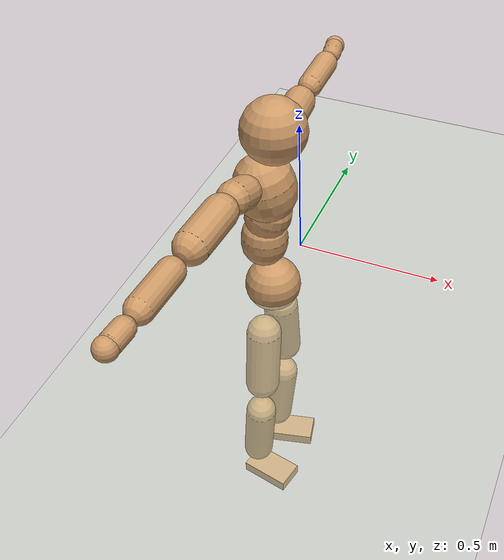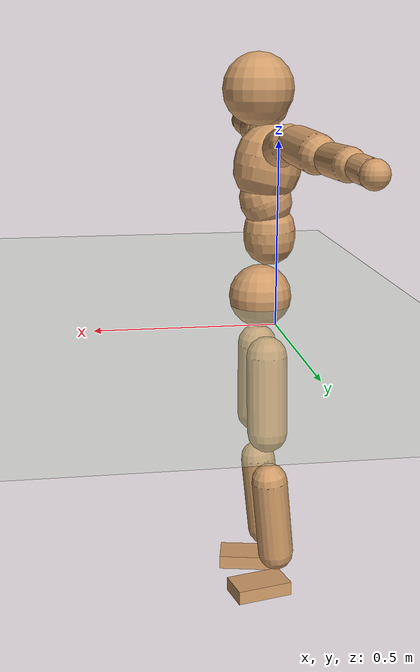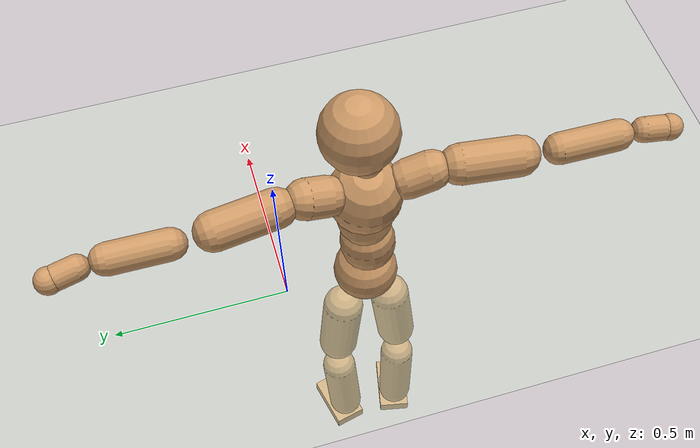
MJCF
<mujoco model="humanoid">
  <compiler coordinate="local"/>
  <default>
    <joint damping="0.0" armature="0.01" stiffness="0.0" limited="true"/>
    <geom conaffinity="1" condim="3" contype="7" margin="0.001" rgba="0.8 0.6 .4 1"/>
  </default>
  <asset>
    <texture type="skybox" builtin="gradient" rgb1=".4 .5 .6" rgb2="0 0 0" width="100" height="100"/>
    <texture builtin="flat" height="1278" mark="cross" markrgb="1 1 1" name="texgeom" random="0.01" rgb1="0.8 0.6 0.4" rgb2="0.8 0.6 0.4" type="cube" width="127"/>
    <texture builtin="checker" height="100" name="texplane" rgb1="0 0 0" rgb2="0.8 0.8 0.8" type="2d" width="100"/>
    <material name="MatPlane" reflectance="0.5" shininess="1" specular="1" texrepeat="60 60" texture="texplane"/>
    <material name="geom" texture="texgeom" texuniform="true"/>
  </asset>
  <worldbody>
    <light cutoff="100" diffuse="1 1 1" dir="-0 0 -1.3" directional="true" exponent="1" pos="0 0 1.3" specular=".1 .1 .1"/>
    <geom conaffinity="1" condim="3" name="floor" pos="0 0 0" rgba="0.8 0.9 0.8 1" size="100 100 .2" type="plane" material="MatPlane"/>
    <body name="Pelvis" pos="-0.0028 -0.235 0.0247">
      <freejoint name="Pelvis"/>
      <geom type="sphere" contype="1" conaffinity="1" density="500" size="0.0929" pos="0.0000 0.0000 0.0000" name="Pelvis"/>
      <body name="L_Hip" pos="-0.008 0.066 -0.092">
        <joint name="L_Hip_x" type="hinge" pos="0 0 0" axis="1 0 0" stiffness="800" damping="80" armature="0.02" range="-180.0000 180.0000"/>
        <joint name="L_Hip_y" type="hinge" pos="0 0 0" axis="0 1 0" stiffness="800" damping="80" armature="0.02" range="-180.0000 180.0000"/>
        <joint name="L_Hip_z" type="hinge" pos="0 0 0" axis="0 0 1" stiffness="800" damping="80" armature="0.02" range="-180.0000 180.0000"/>
        <geom type="capsule" contype="1" conaffinity="1" density="500" fromto="-0.0001 0.0076 -0.0765 -0.0006 0.0304 -0.3062" size="0.0603" name="L_Hip"/>
        <body name="L_Knee" pos="-0.0007 0.038 -0.3827">
          <joint name="L_Knee_x" type="hinge" pos="0 0 0" axis="1 0 0" stiffness="800" damping="80" armature="0.02" range="-180.0000 180.0000"/>
          <joint name="L_Knee_y" type="hinge" pos="0 0 0" axis="0 1 0" stiffness="800" damping="80" armature="0.02" range="-180.0000 180.0000"/>
          <joint name="L_Knee_z" type="hinge" pos="0 0 0" axis="0 0 1" stiffness="800" damping="80" armature="0.02" range="-180.0000 180.0000"/>
          <geom type="capsule" contype="1" conaffinity="1" density="500" fromto="-0.0086 -0.0031 -0.0814 -0.0342 -0.0124 -0.3255" size="0.0543" name="L_Knee"/>
          <body name="L_Ankle" pos="-0.0428 -0.0155 -0.4069">
            <joint name="L_Ankle_x" type="hinge" pos="0 0 0" axis="1 0 0" stiffness="800" damping="80" armature="0.02" range="-180.0000 180.0000"/>
            <joint name="L_Ankle_y" type="hinge" pos="0 0 0" axis="0 1 0" stiffness="800" damping="80" armature="0.02" range="-180.0000 180.0000"/>
            <joint name="L_Ankle_z" type="hinge" pos="0 0 0" axis="0 0 1" stiffness="800" damping="80" armature="0.02" range="-180.0000 180.0000"/>
            <geom type="box" contype="1" conaffinity="1" density="500" pos="0.0616 0.0139 -0.0281" size="0.0871 0.0498 0.0213" quat="0.9939 0.0000 0.0000 0.1106" name="L_Ankle"/>
            <body name="L_Toe" pos="0.1233 0.0278 -0.0563">
              <joint name="L_Toe_x" type="hinge" pos="0 0 0" axis="1 0 0" stiffness="500" damping="50" armature="0.02" range="-180.0000 180.0000"/>
              <joint name="L_Toe_y" type="hinge" pos="0 0 0" axis="0 1 0" stiffness="500" damping="50" armature="0.02" range="-180.0000 180.0000"/>
              <joint name="L_Toe_z" type="hinge" pos="0 0 0" axis="0 0 1" stiffness="500" damping="50" armature="0.02" range="-180.0000 180.0000"/>
              <geom type="box" contype="1" conaffinity="1" density="500" pos="0.0000 0.0000 0.0274" size="0.001 0.0024 0.001" quat="0.9932 0.0000 0.0000 0.1164" name="L_Toe"/>
            </body>
          </body>
        </body>
      </body>
      <body name="R_Hip" pos="-0.0063 -0.0645 -0.0907">
        <joint name="R_Hip_x" type="hinge" pos="0 0 0" axis="1 0 0" stiffness="800" damping="80" armature="0.02" range="-180.0000 180.0000"/>
        <joint name="R_Hip_y" type="hinge" pos="0 0 0" axis="0 1 0" stiffness="800" damping="80" armature="0.02" range="-180.0000 180.0000"/>
        <joint name="R_Hip_z" type="hinge" pos="0 0 0" axis="0 0 1" stiffness="800" damping="80" armature="0.02" range="-180.0000 180.0000"/>
        <geom type="capsule" contype="1" conaffinity="1" density="500" fromto="-0.0013 -0.0081 -0.0782 -0.0053 -0.0325 -0.3127" size="0.0592" name="R_Hip"/>
        <body name="R_Knee" pos="-0.0066 -0.0407 -0.3909">
          <joint name="R_Knee_x" type="hinge" pos="0 0 0" axis="1 0 0" stiffness="800" damping="80" armature="0.02" range="-180.0000 180.0000"/>
          <joint name="R_Knee_y" type="hinge" pos="0 0 0" axis="0 1 0" stiffness="800" damping="80" armature="0.02" range="-180.0000 180.0000"/>
          <joint name="R_Knee_z" type="hinge" pos="0 0 0" axis="0 0 1" stiffness="800" damping="80" armature="0.02" range="-180.0000 180.0000"/>
          <geom type="capsule" contype="1" conaffinity="1" density="500" fromto="-0.0083 0.0035 -0.0814 -0.0330 0.0141 -0.3257" size="0.0542" name="R_Knee"/>
          <body name="R_Ankle" pos="-0.0413 0.0176 -0.4072">
            <joint name="R_Ankle_x" type="hinge" pos="0 0 0" axis="1 0 0" stiffness="800" damping="80" armature="0.02" range="-180.0000 180.0000"/>
            <joint name="R_Ankle_y" type="hinge" pos="0 0 0" axis="0 1 0" stiffness="800" damping="80" armature="0.02" range="-180.0000 180.0000"/>
            <joint name="R_Ankle_z" type="hinge" pos="0 0 0" axis="0 0 1" stiffness="800" damping="80" armature="0.02" range="-180.0000 180.0000"/>
            <geom type="box" contype="1" conaffinity="1" density="500" pos="0.0639 -0.0133 -0.0247" size="0.0892 0.0499 0.0213" quat="0.9947 0.0000 0.0000 -0.1027" name="R_Ankle"/>
            <body name="R_Toe" pos="0.1277 -0.0267 -0.0493">
              <joint name="R_Toe_x" type="hinge" pos="0 0 0" axis="1 0 0" stiffness="500" damping="50" armature="0.02" range="-180.0000 180.0000"/>
              <joint name="R_Toe_y" type="hinge" pos="0 0 0" axis="0 1 0" stiffness="500" damping="50" armature="0.02" range="-180.0000 180.0000"/>
              <joint name="R_Toe_z" type="hinge" pos="0 0 0" axis="0 0 1" stiffness="500" damping="50" armature="0.02" range="-180.0000 180.0000"/>
              <geom type="box" contype="1" conaffinity="1" density="500" pos="0.0000 0.0000 0.0250" size="0.001 0.0025 0.0011" quat="0.9956 0.0000 0.0000 -0.0938" name="R_Toe"/>
            </body>
          </body>
        </body>
      </body>
      <body name="Torso" pos="-0.0273 -0.0027 0.1125">
        <joint name="Torso_x" type="hinge" pos="0 0 0" axis="1 0 0" stiffness="1000" damping="100" armature="0.02" range="-180.0000 180.0000"/>
        <joint name="Torso_y" type="hinge" pos="0 0 0" axis="0 1 0" stiffness="1000" damping="100" armature="0.02" range="-180.0000 180.0000"/>
        <joint name="Torso_z" type="hinge" pos="0 0 0" axis="0 0 1" stiffness="1000" damping="100" armature="0.02" range="-180.0000 180.0000"/>
        <geom type="capsule" contype="1" conaffinity="1" density="500" fromto="0.0032 0.0044 0.0867 0.0021 0.0029 0.0578" size="0.0758" name="Torso"/>
        <body name="Spine" pos="0.0053 0.0073 0.1445">
          <joint name="Spine_x" type="hinge" pos="0 0 0" axis="1 0 0" stiffness="1000" damping="100" armature="0.02" range="-180.0000 180.0000"/>
          <joint name="Spine_y" type="hinge" pos="0 0 0" axis="0 1 0" stiffness="1000" damping="100" armature="0.02" range="-180.0000 180.0000"/>
          <joint name="Spine_z" type="hinge" pos="0 0 0" axis="0 0 1" stiffness="1000" damping="100" armature="0.02" range="-180.0000 180.0000"/>
          <geom type="capsule" contype="1" conaffinity="1" density="500" fromto="0.0133 0.0007 0.0339 0.0089 0.0004 0.0226" size="0.075" name="Spine"/>
          <body name="Chest" pos="0.0222 0.0011 0.0565">
            <joint name="Chest_x" type="hinge" pos="0 0 0" axis="1 0 0" stiffness="1000" damping="100" armature="0.02" range="-180.0000 180.0000"/>
            <joint name="Chest_y" type="hinge" pos="0 0 0" axis="0 1 0" stiffness="1000" damping="100" armature="0.02" range="-180.0000 180.0000"/>
            <joint name="Chest_z" type="hinge" pos="0 0 0" axis="0 0 1" stiffness="1000" damping="100" armature="0.02" range="-180.0000 180.0000"/>
            <geom type="capsule" contype="1" conaffinity="1" density="500" fromto="-0.0202 -0.0016 0.0925 -0.0134 -0.0010 0.0617" size="0.098" name="Chest"/>
            <body name="Neck" pos="-0.0362 -0.0038 0.218">
              <joint name="Neck_x" type="hinge" pos="0 0 0" axis="1 0 0" stiffness="500" damping="50" armature="0.02" range="-180.0000 180.0000"/>
              <joint name="Neck_y" type="hinge" pos="0 0 0" axis="0 1 0" stiffness="500" damping="50" armature="0.02" range="-180.0000 180.0000"/>
              <joint name="Neck_z" type="hinge" pos="0 0 0" axis="0 0 1" stiffness="500" damping="50" armature="0.02" range="-180.0000 180.0000"/>
              <geom type="capsule" contype="1" conaffinity="1" density="500" fromto="0.0103 0.0014 0.0136 0.0414 0.0056 0.0545" size="0.0453" name="Neck"/>
              <body name="Head" pos="0.0517 0.007 0.0681">
                <joint name="Head_x" type="hinge" pos="0 0 0" axis="1 0 0" stiffness="500" damping="50" armature="0.02" range="-180.0000 180.0000"/>
                <joint name="Head_y" type="hinge" pos="0 0 0" axis="0 1 0" stiffness="500" damping="50" armature="0.02" range="-180.0000 180.0000"/>
                <joint name="Head_z" type="hinge" pos="0 0 0" axis="0 0 1" stiffness="500" damping="50" armature="0.02" range="-180.0000 180.0000"/>
                <geom type="sphere" contype="1" conaffinity="1" density="500" size="0.1026" pos="0.0000 0.0000 0.0000" name="Head"/>
              </body>
            </body>
            <body name="L_Thorax" pos="-0.0302 0.0814 0.1242">
              <joint name="L_Thorax_x" type="hinge" pos="0 0 0" axis="1 0 0" stiffness="500" damping="50" armature="0.02" range="-180.0000 180.0000"/>
              <joint name="L_Thorax_y" type="hinge" pos="0 0 0" axis="0 1 0" stiffness="500" damping="50" armature="0.02" range="-180.0000 180.0000"/>
              <joint name="L_Thorax_z" type="hinge" pos="0 0 0" axis="0 0 1" stiffness="500" damping="50" armature="0.02" range="-180.0000 180.0000"/>
              <geom type="capsule" contype="1" conaffinity="1" density="500" fromto="-0.0019 0.0193 0.0060 -0.0076 0.0771 0.0238" size="0.0535" name="L_Thorax"/>
              <body name="L_Shoulder" pos="-0.0095 0.0964 0.0298">
                <joint name="L_Shoulder_x" type="hinge" pos="0 0 0" axis="1 0 0" stiffness="500" damping="50" armature="0.02" range="-720.0000 720.0000"/>
                <joint name="L_Shoulder_y" type="hinge" pos="0 0 0" axis="0 1 0" stiffness="500" damping="50" armature="0.02" range="-720.0000 720.0000"/>
                <joint name="L_Shoulder_z" type="hinge" pos="0 0 0" axis="0 0 1" stiffness="500" damping="50" armature="0.02" range="-720.0000 720.0000"/>
                <geom type="capsule" contype="1" conaffinity="1" density="500" fromto="-0.0053 0.0535 -0.0029 -0.0212 0.2140 -0.0114" size="0.0522" name="L_Shoulder"/>
                <body name="L_Elbow" pos="-0.0265 0.2675 -0.0143">
                  <joint name="L_Elbow_x" type="hinge" pos="0 0 0" axis="1 0 0" stiffness="500" damping="50" armature="0.02" range="-720.0000 720.0000"/>
                  <joint name="L_Elbow_y" type="hinge" pos="0 0 0" axis="0 1 0" stiffness="500" damping="50" armature="0.02" range="-720.0000 720.0000"/>
                  <joint name="L_Elbow_z" type="hinge" pos="0 0 0" axis="0 0 1" stiffness="500" damping="50" armature="0.02" range="-720.0000 720.0000"/>
                  <geom type="capsule" contype="1" conaffinity="1" density="500" fromto="-0.0005 0.0517 0.0017 -0.0019 0.2069 0.0069" size="0.0413" name="L_Elbow"/>
                  <body name="L_Wrist" pos="-0.0023 0.2587 0.0087">
                    <joint name="L_Wrist_x" type="hinge" pos="0 0 0" axis="1 0 0" stiffness="300" damping="30" armature="0.02" range="-180.0000 180.0000"/>
                    <joint name="L_Wrist_y" type="hinge" pos="0 0 0" axis="0 1 0" stiffness="300" damping="30" armature="0.02" range="-180.0000 180.0000"/>
                    <joint name="L_Wrist_z" type="hinge" pos="0 0 0" axis="0 0 1" stiffness="300" damping="30" armature="0.02" range="-180.0000 180.0000"/>
                    <geom type="capsule" contype="1" conaffinity="1" density="500" fromto="-0.0033 0.0175 -0.0014 -0.0131 0.0699 -0.0055" size="0.033" name="L_Wrist"/>
                    <body name="L_Hand" pos="-0.0163 0.0874 -0.0069">
                      <joint name="L_Hand_x" type="hinge" pos="0 0 0" axis="1 0 0" stiffness="300" damping="30" armature="0.02" range="-180.0000 180.0000"/>
                      <joint name="L_Hand_y" type="hinge" pos="0 0 0" axis="0 1 0" stiffness="300" damping="30" armature="0.02" range="-180.0000 180.0000"/>
                      <joint name="L_Hand_z" type="hinge" pos="0 0 0" axis="0 0 1" stiffness="300" damping="30" armature="0.02" range="-180.0000 180.0000"/>
                      <geom type="sphere" contype="1" conaffinity="1" density="500" size="0.0348" pos="0.0000 0.0000 0.0000" name="L_Hand"/>
                    </body>
                  </body>
                </body>
              </body>
            </body>
            <body name="R_Thorax" pos="-0.0344 -0.0854 0.1204">
              <joint name="R_Thorax_x" type="hinge" pos="0 0 0" axis="1 0 0" stiffness="500" damping="50" armature="0.02" range="-180.0000 180.0000"/>
              <joint name="R_Thorax_y" type="hinge" pos="0 0 0" axis="0 1 0" stiffness="500" damping="50" armature="0.02" range="-180.0000 180.0000"/>
              <joint name="R_Thorax_z" type="hinge" pos="0 0 0" axis="0 0 1" stiffness="500" damping="50" armature="0.02" range="-180.0000 180.0000"/>
              <geom type="capsule" contype="1" conaffinity="1" density="500" fromto="-0.0017 -0.0205 0.0066 -0.0066 -0.0818 0.0264" size="0.0525" name="R_Thorax"/>
              <body name="R_Shoulder" pos="-0.0083 -0.1023 0.033">
                <joint name="R_Shoulder_x" type="hinge" pos="0 0 0" axis="1 0 0" stiffness="500" damping="50" armature="0.02" range="-720.0000 720.0000"/>
                <joint name="R_Shoulder_y" type="hinge" pos="0 0 0" axis="0 1 0" stiffness="500" damping="50" armature="0.02" range="-720.0000 720.0000"/>
                <joint name="R_Shoulder_z" type="hinge" pos="0 0 0" axis="0 0 1" stiffness="500" damping="50" armature="0.02" range="-720.0000 720.0000"/>
                <geom type="capsule" contype="1" conaffinity="1" density="500" fromto="-0.0042 -0.0522 -0.0029 -0.0169 -0.2087 -0.0114" size="0.0538" name="R_Shoulder"/>
                <body name="R_Elbow" pos="-0.0212 -0.2608 -0.0143">
                  <joint name="R_Elbow_x" type="hinge" pos="0 0 0" axis="1 0 0" stiffness="500" damping="50" armature="0.02" range="-720.0000 720.0000"/>
                  <joint name="R_Elbow_y" type="hinge" pos="0 0 0" axis="0 1 0" stiffness="500" damping="50" armature="0.02" range="-720.0000 720.0000"/>
                  <joint name="R_Elbow_z" type="hinge" pos="0 0 0" axis="0 0 1" stiffness="500" damping="50" armature="0.02" range="-720.0000 720.0000"/>
                  <geom type="capsule" contype="1" conaffinity="1" density="500" fromto="-0.0015 -0.0527 0.0012 -0.0061 -0.2110 0.0050" size="0.0418" name="R_Elbow"/>
                  <body name="R_Wrist" pos="-0.0076 -0.2637 0.0062">
                    <joint name="R_Wrist_x" type="hinge" pos="0 0 0" axis="1 0 0" stiffness="300" damping="30" armature="0.02" range="-180.0000 180.0000"/>
                    <joint name="R_Wrist_y" type="hinge" pos="0 0 0" axis="0 1 0" stiffness="300" damping="30" armature="0.02" range="-180.0000 180.0000"/>
                    <joint name="R_Wrist_z" type="hinge" pos="0 0 0" axis="0 0 1" stiffness="300" damping="30" armature="0.02" range="-180.0000 180.0000"/>
                    <geom type="capsule" contype="1" conaffinity="1" density="500" fromto="-0.0020 -0.0176 -0.0010 -0.0081 -0.0703 -0.0041" size="0.0338" name="R_Wrist"/>
                    <body name="R_Hand" pos="-0.0101 -0.0878 -0.0052">
                      <joint name="R_Hand_x" type="hinge" pos="0 0 0" axis="1 0 0" stiffness="300" damping="30" armature="0.02" range="-180.0000 180.0000"/>
                      <joint name="R_Hand_y" type="hinge" pos="0 0 0" axis="0 1 0" stiffness="300" damping="30" armature="0.02" range="-180.0000 180.0000"/>
                      <joint name="R_Hand_z" type="hinge" pos="0 0 0" axis="0 0 1" stiffness="300" damping="30" armature="0.02" range="-180.0000 180.0000"/>
                      <geom type="sphere" contype="1" conaffinity="1" density="500" size="0.0352" pos="0.0000 0.0000 0.0000" name="R_Hand"/>
                    </body>
                  </body>
                </body>
              </body>
            </body>
          </body>
        </body>
      </body>
    </body>
  </worldbody>
  <actuator>
    <motor name="L_Hip_x" joint="L_Hip_x" gear="500"/>
    <motor name="L_Hip_y" joint="L_Hip_y" gear="500"/>
    <motor name="L_Hip_z" joint="L_Hip_z" gear="500"/>
    <motor name="L_Knee_x" joint="L_Knee_x" gear="500"/>
    <motor name="L_Knee_y" joint="L_Knee_y" gear="500"/>
    <motor name="L_Knee_z" joint="L_Knee_z" gear="500"/>
    <motor name="L_Ankle_x" joint="L_Ankle_x" gear="500"/>
    <motor name="L_Ankle_y" joint="L_Ankle_y" gear="500"/>
    <motor name="L_Ankle_z" joint="L_Ankle_z" gear="500"/>
    <motor name="L_Toe_x" joint="L_Toe_x" gear="500"/>
    <motor name="L_Toe_y" joint="L_Toe_y" gear="500"/>
    <motor name="L_Toe_z" joint="L_Toe_z" gear="500"/>
    <motor name="R_Hip_x" joint="R_Hip_x" gear="500"/>
    <motor name="R_Hip_y" joint="R_Hip_y" gear="500"/>
    <motor name="R_Hip_z" joint="R_Hip_z" gear="500"/>
    <motor name="R_Knee_x" joint="R_Knee_x" gear="500"/>
    <motor name="R_Knee_y" joint="R_Knee_y" gear="500"/>
    <motor name="R_Knee_z" joint="R_Knee_z" gear="500"/>
    <motor name="R_Ankle_x" joint="R_Ankle_x" gear="500"/>
    <motor name="R_Ankle_y" joint="R_Ankle_y" gear="500"/>
    <motor name="R_Ankle_z" joint="R_Ankle_z" gear="500"/>
    <motor name="R_Toe_x" joint="R_Toe_x" gear="500"/>
    <motor name="R_Toe_y" joint="R_Toe_y" gear="500"/>
    <motor name="R_Toe_z" joint="R_Toe_z" gear="500"/>
    <motor name="Torso_x" joint="Torso_x" gear="500"/>
    <motor name="Torso_y" joint="Torso_y" gear="500"/>
    <motor name="Torso_z" joint="Torso_z" gear="500"/>
    <motor name="Spine_x" joint="Spine_x" gear="500"/>
    <motor name="Spine_y" joint="Spine_y" gear="500"/>
    <motor name="Spine_z" joint="Spine_z" gear="500"/>
    <motor name="Chest_x" joint="Chest_x" gear="500"/>
    <motor name="Chest_y" joint="Chest_y" gear="500"/>
    <motor name="Chest_z" joint="Chest_z" gear="500"/>
    <motor name="Neck_x" joint="Neck_x" gear="500"/>
    <motor name="Neck_y" joint="Neck_y" gear="500"/>
    <motor name="Neck_z" joint="Neck_z" gear="500"/>
    <motor name="Head_x" joint="Head_x" gear="500"/>
    <motor name="Head_y" joint="Head_y" gear="500"/>
    <motor name="Head_z" joint="Head_z" gear="500"/>
    <motor name="L_Thorax_x" joint="L_Thorax_x" gear="500"/>
    <motor name="L_Thorax_y" joint="L_Thorax_y" gear="500"/>
    <motor name="L_Thorax_z" joint="L_Thorax_z" gear="500"/>
    <motor name="L_Shoulder_x" joint="L_Shoulder_x" gear="500"/>
    <motor name="L_Shoulder_y" joint="L_Shoulder_y" gear="500"/>
    <motor name="L_Shoulder_z" joint="L_Shoulder_z" gear="500"/>
    <motor name="L_Elbow_x" joint="L_Elbow_x" gear="500"/>
    <motor name="L_Elbow_y" joint="L_Elbow_y" gear="500"/>
    <motor name="L_Elbow_z" joint="L_Elbow_z" gear="500"/>
    <motor name="L_Wrist_x" joint="L_Wrist_x" gear="500"/>
    <motor name="L_Wrist_y" joint="L_Wrist_y" gear="500"/>
    <motor name="L_Wrist_z" joint="L_Wrist_z" gear="500"/>
    <motor name="L_Hand_x" joint="L_Hand_x" gear="500"/>
    <motor name="L_Hand_y" joint="L_Hand_y" gear="500"/>
    <motor name="L_Hand_z" joint="L_Hand_z" gear="500"/>
    <motor name="R_Thorax_x" joint="R_Thorax_x" gear="500"/>
    <motor name="R_Thorax_y" joint="R_Thorax_y" gear="500"/>
    <motor name="R_Thorax_z" joint="R_Thorax_z" gear="500"/>
    <motor name="R_Shoulder_x" joint="R_Shoulder_x" gear="500"/>
    <motor name="R_Shoulder_y" joint="R_Shoulder_y" gear="500"/>
    <motor name="R_Shoulder_z" joint="R_Shoulder_z" gear="500"/>
    <motor name="R_Elbow_x" joint="R_Elbow_x" gear="500"/>
    <motor name="R_Elbow_y" joint="R_Elbow_y" gear="500"/>
    <motor name="R_Elbow_z" joint="R_Elbow_z" gear="500"/>
    <motor name="R_Wrist_x" joint="R_Wrist_x" gear="500"/>
    <motor name="R_Wrist_y" joint="R_Wrist_y" gear="500"/>
    <motor name="R_Wrist_z" joint="R_Wrist_z" gear="500"/>
    <motor name="R_Hand_x" joint="R_Hand_x" gear="500"/>
    <motor name="R_Hand_y" joint="R_Hand_y" gear="500"/>
    <motor name="R_Hand_z" joint="R_Hand_z" gear="500"/>
  </actuator>
  <contact>
    <exclude body1="Torso" body2="Chest"/>
    <exclude body1="Head" body2="Chest"/>
    <exclude body1="R_Knee" body2="R_Toe"/>
    <exclude body1="R_Knee" body2="L_Ankle"/>
    <exclude body1="R_Knee" body2="L_Toe"/>
    <exclude body1="L_Knee" body2="L_Toe"/>
    <exclude body1="L_Knee" body2="R_Ankle"/>
    <exclude body1="L_Knee" body2="R_Toe"/>
    <exclude body1="L_Shoulder" body2="Chest"/>
    <exclude body1="R_Shoulder" body2="Chest"/>
  </contact>
  <sensor/>
  <size njmax="700" nconmax="700"/>
</mujoco>
